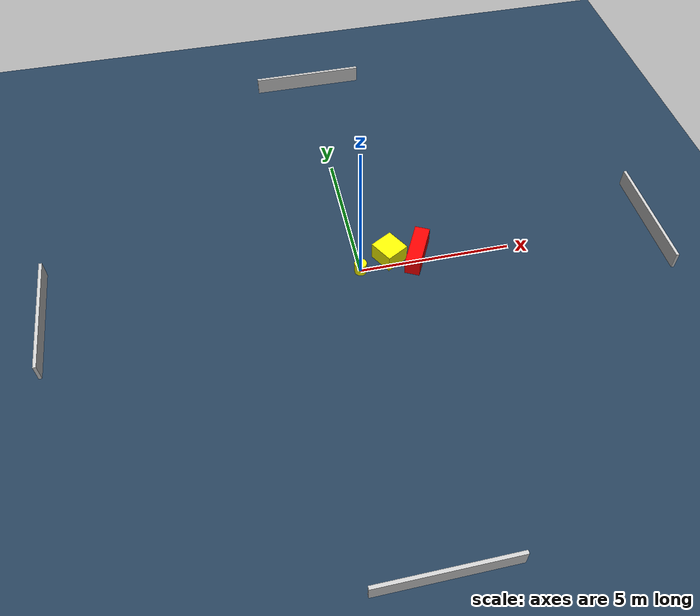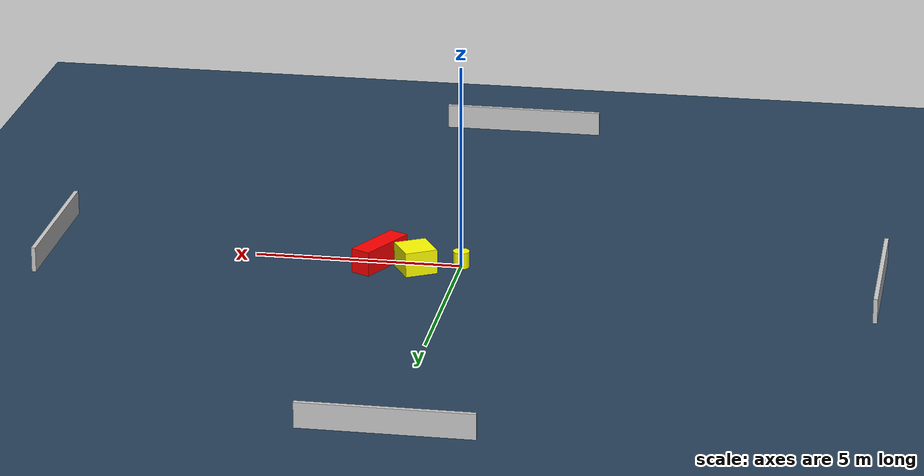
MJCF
<?xml version="1.0" ?>
<mujoco model="generated_environment">
  <option timestep="0.01" integrator="RK4" cone="elliptic"/>
  <default>
    <geom density="1"/>
  </default>
  <asset>
    <texture builtin="gradient" height="3072" name="skybox" rgb1="0.3 0.5 0.7" rgb2="0 0 0" type="skybox" width="512"/>
    <texture builtin="checker" height="300" name="groundplane" rgb1="0.2 0.3 0.4" rgb2="0.1 0.2 0.3" type="2d" width="300"/>
    <material name="groundplane" reflectance="0.2" texrepeat="5 5" texture="groundplane"/>
  </asset>
  <worldbody>
    <light dir="0 0 -1" directional="true" pos="0 0 1.5"/>
    <geom condim="3" friction="0.5 0.005 0.001" material="groundplane" name="floor" pos="0 0 0" size="0 0 0.05" type="plane"/>
    <body name="walls">
      <geom name="wall_1" condim="4" pos="-10.0 0.0 0.3" rgba="0.800000011920929 0.800000011920929 0.800000011920929 1.0" size="0.05 2.0 0.3" type="box"/>
      <geom name="wall_2" condim="4" pos="10.0 0.0 0.3" rgba="0.800000011920929 0.800000011920929 0.800000011920929 1.0" size="0.05 2.0 0.3" type="box"/>
      <geom name="wall_3" condim="4" pos="0.0 -10.0 0.3" rgba="0.800000011920929 0.800000011920929 0.800000011920929 1.0" size="2.0 0.05 0.3" type="box"/>
      <geom name="wall_4" condim="4" pos="0.0 10.0 0.3" rgba="0.800000011920929 0.800000011920929 0.800000011920929 1.0" size="2.0 0.05 0.3" type="box"/>
    </body>
    <body name="robot">
      <joint name="joint_x" type="slide" pos="0 0 0" axis="1 0 0"/>
      <joint name="joint_y" type="slide" pos="0 0 0" axis="0 1 0"/>
      <geom name="robot" type="cylinder" pos="0.0 0.0 0.2" size="0.2 0.2 0.0" mass="5.0" friction="1.0 0.005 0.0001" condim="4" rgba="1.0 1.0 0.0 1.0"/>
    </body>
    <body name="obstacle_1_movable">
      <geom name="obstacle_1_movable" condim="4" pos="1.041116980316943 0.36629974928632586 0.3" euler="0 0 299.5964587799228" friction="0.0 0.005 0.001" rgba="1.0 1.0 0.0 1.0" size="0.41829453414601697 0.3990209235477389 0.3" type="box" mass="0.1"/>
      <joint type="free"/>
    </body>
    <body name="obstacle_2_static">
      <geom name="obstacle_2_static" condim="4" pos="1.9451249798642023 0.20788003587981002 0.3" euler="0 0 243.06700803733116" friction="0.0 0.005 0.001" rgba="1.0 0.0 0.0 1.0" size="0.7682119288724316 0.24871668334805525 0.3" type="box"/>
    </body>
  </worldbody>
  <actuator>
    <motor name="actuator_x" joint="joint_x" gear="1" ctrlrange="-1 1"/>
    <motor name="actuator_y" joint="joint_y" gear="1" ctrlrange="-1 1"/>
  </actuator>
</mujoco>
